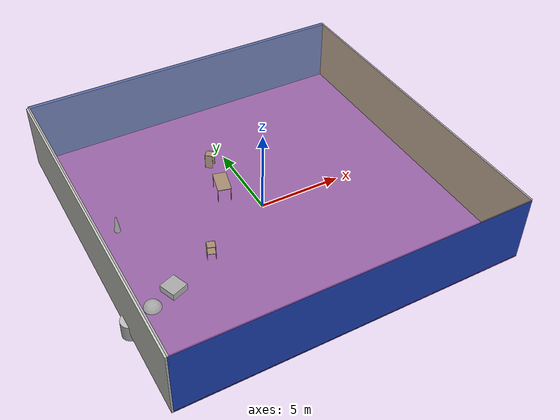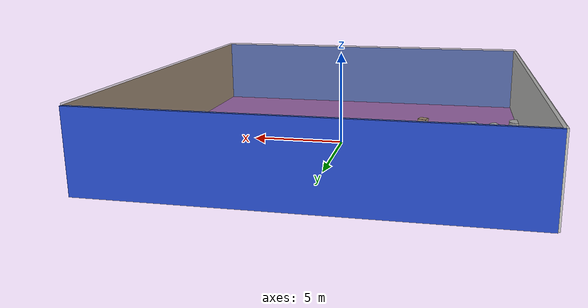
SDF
<sdf version="1.4">
 <world name="default">
  <physics type="ode">
   <max_step_size>0.001</max_step_size>
   <real_time_factor>1</real_time_factor>
   <real_time_update_rate>1000</real_time_update_rate>
   <gravity>0 0 -9.8</gravity>
  </physics>
  <scene><ambient>0.4 0.4 0.4 1</ambient><background>0.7 0.7 0.7 1</background><shadows>1</shadows></scene>
  <model name="Surrounding">
   <static>1</static>
   <link name="Ceiling">
    <collision name="Ceiling_Collision"><geometry><box><size>20 20 0.1</size></box></geometry></collision>
    <visual name="Ceiling_Visual">
     <geometry><box><size>20 20 0.1</size></box></geometry>
     <material>
      <script><uri>file://media/materials/scripts/gazebo.material</uri><name>Gazebo/GreyTransparent</name></script>
     </material>
    </visual>
    <pose>0 0 4.05 0 0 0</pose>
   </link>
   <link name="Wall_South">
    <collision name="Wall_South_Collision">
     <geometry><box><size>20 0 4</size></box></geometry>
     <pose>0 0 2 0 -0 0</pose>
    </collision>
    <visual name="Wall_South_Visual">
     <pose>0 0 2 0 -0 0</pose>
     <geometry><box><size>20 0 4</size></box></geometry>
     <material>
      <script><uri>file://media/materials/scripts/gazebo.material</uri><name>Gazebo/BlueGlow</name></script>
     </material>
    </visual>
    <velocity_decay><linear>0</linear><angular>0</angular></velocity_decay>
    <pose>0 -10 0 0 -0 0</pose>
   </link>
   <link name="Wall_East">
    <collision name="Wall_21_Collision">
     <geometry><box><size>20 0 4</size></box></geometry>
     <pose>0 0 2 0 -0 0</pose>
    </collision>
    <visual name="Wall_21_Visual">
     <pose>0 0 2 0 -0 0</pose>
     <geometry><box><size>20 0 4</size></box></geometry>
     <material>
      <script><uri>file://media/materials/scripts/gazebo.material</uri><name>Gazebo/WoodFloor</name></script>
     </material>
    </visual>
    <velocity_decay><linear>0</linear><angular>0</angular></velocity_decay>
    <pose>10 0 0 0 -0 1.5708</pose>
   </link>
   <link name="Wall_North">
    <collision name="Wall_22_Collision">
     <geometry><box><size>20 0.2 4</size></box></geometry>
     <pose>0 0 2 0 -0 0</pose>
    </collision>
    <visual name="Wall_22_Visual">
     <pose>0 0 2 0 -0 0</pose>
     <geometry><box><size>20 0.2 4</size></box></geometry>
     <material>
      <script><uri>file://media/materials/scripts/gazebo.material</uri><name>Gazebo/Blue</name></script>
     </material>
    </visual>
    <velocity_decay><linear>0</linear><angular>0</angular></velocity_decay>
    <pose>0 10 0 0 -0 0</pose>
   </link>
   <link name="Wall_West">
    <collision name="Wall_23_Collision">
     <geometry><box><size>20 0.2 4</size></box></geometry>
     <pose>0 0 2 0 -0 0</pose>
    </collision>
    <visual name="Wall_23_Visual">
     <pose>0 0 2 0 -0 0</pose>
     <geometry><box><size>20 0.2 4</size></box></geometry>
     <material>
      <script><uri>file://media/materials/scripts/gazebo.material</uri><name>Gazebo/CeilingTiled</name></script>
     </material>
    </visual>
    <velocity_decay><linear>0</linear><angular>0</angular></velocity_decay>
    <pose>-10 0 0 0 0 -1.5708</pose>
   </link>
   <link name="Ground_link">
    <collision name="collision">
     <pose>0 0 .05 0 -0 0</pose>
     <geometry><box><size>20 20 0.1</size></box></geometry>
    </collision>
    <visual name="visual">
     <pose>0 0 .05 0 -0 0</pose>
     <geometry><box><size>20 20 0.1</size></box></geometry>
     <material>
      <script><uri>file://media/materials/scripts/gazebo.material</uri><name>Gazebo/PurpleGlow</name></script>
     </material>
    </visual>
   </link>
   <static>1</static>
  </model>
  <spherical_coordinates>
   <surface_model>EARTH_WGS84</surface_model>
   <latitude_deg>0</latitude_deg>
   <longitude_deg>0</longitude_deg>
   <elevation>0</elevation>
   <heading_deg>0</heading_deg>
  </spherical_coordinates>
  <light name="lightball_0" type="diffuse">
   <diffuse>0.8 0.8 0.8 1</diffuse>
   <specular>0.2 0.2 0.2 1</specular>
   <attenuation>
    <range>100</range>
    <constant>0.7</constant>
    <linear>0.01</linear>
    <quadratic>0.001</quadratic>
   </attenuation>
   <direction>-0.5 0.1 -0.9</direction>
   <pose>-6.28674457041 6.71324965231 1.11353095833 0 0 0</pose>
  </light>
  <light name="lightball_1" type="diffuse">
   <diffuse>0.8 0.8 0.8 1</diffuse>
   <specular>0.2 0.2 0.2 1</specular>
   <attenuation>
    <range>100</range>
    <constant>0.7</constant>
    <linear>0.01</linear>
    <quadratic>0.001</quadratic>
   </attenuation>
   <direction>-0.5 0.1 -0.9</direction>
   <pose>-4.3831152889 -4.19444081993 0.909154563128 0 0 0</pose>
  </light>
  <light name="lightball_2" type="diffuse">
   <diffuse>0.8 0.8 0.8 1</diffuse>
   <specular>0.2 0.2 0.2 1</specular>
   <attenuation>
    <range>100</range>
    <constant>0.7</constant>
    <linear>0.01</linear>
    <quadratic>0.001</quadratic>
   </attenuation>
   <direction>-0.5 0.1 -0.9</direction>
   <pose>7.234695111 -3.7860209285 1.21734009394 0 0 0</pose>
  </light>
  <light name="lightball_3" type="diffuse">
   <diffuse>0.8 0.8 0.8 1</diffuse>
   <specular>0.2 0.2 0.2 1</specular>
   <attenuation>
    <range>100</range>
    <constant>0.7</constant>
    <linear>0.01</linear>
    <quadratic>0.001</quadratic>
   </attenuation>
   <direction>-0.5 0.1 -0.9</direction>
   <pose>-9.16500998757 -9.09017885176 2.49452736148 0 0 0</pose>
  </light>
  <light name="lightball_4" type="diffuse">
   <diffuse>0.8 0.8 0.8 1</diffuse>
   <specular>0.2 0.2 0.2 1</specular>
   <attenuation>
    <range>100</range>
    <constant>0.7</constant>
    <linear>0.01</linear>
    <quadratic>0.001</quadratic>
   </attenuation>
   <direction>-0.5 0.1 -0.9</direction>
   <pose>-1.93435698921 -4.71585640579 2.47611188321 0 0 0</pose>
  </light>
  <light name="lightball_5" type="diffuse">
   <diffuse>0.8 0.8 0.8 1</diffuse>
   <specular>0.2 0.2 0.2 1</specular>
   <attenuation>
    <range>100</range>
    <constant>0.7</constant>
    <linear>0.01</linear>
    <quadratic>0.001</quadratic>
   </attenuation>
   <direction>-0.5 0.1 -0.9</direction>
   <pose>7.20512866006 1.33433530711 3.59107326046 0 0 0</pose>
  </light>
  <light name="lightball_6" type="diffuse">
   <diffuse>0.8 0.8 0.8 1</diffuse>
   <specular>0.2 0.2 0.2 1</specular>
   <attenuation>
    <range>100</range>
    <constant>0.7</constant>
    <linear>0.01</linear>
    <quadratic>0.001</quadratic>
   </attenuation>
   <direction>-0.5 0.1 -0.9</direction>
   <pose>-2.90921320356 1.6758103285 2.35652722329 0 0 0</pose>
  </light>
  <light name="lightball_7" type="diffuse">
   <diffuse>0.8 0.8 0.8 1</diffuse>
   <specular>0.2 0.2 0.2 1</specular>
   <attenuation>
    <range>100</range>
    <constant>0.7</constant>
    <linear>0.01</linear>
    <quadratic>0.001</quadratic>
   </attenuation>
   <direction>-0.5 0.1 -0.9</direction>
   <pose>-3.111334705 -5.06712068734 0.925529890676 0 0 0</pose>
  </light>
  <light name="lightball_8" type="diffuse">
   <diffuse>0.8 0.8 0.8 1</diffuse>
   <specular>0.2 0.2 0.2 1</specular>
   <attenuation>
    <range>100</range>
    <constant>0.7</constant>
    <linear>0.01</linear>
    <quadratic>0.001</quadratic>
   </attenuation>
   <direction>-0.5 0.1 -0.9</direction>
   <pose>-7.22014546247 -3.88683848695 2.14936864214 0 0 0</pose>
  </light>
  <light name="lightball_9" type="diffuse">
   <diffuse>0.8 0.8 0.8 1</diffuse>
   <specular>0.2 0.2 0.2 1</specular>
   <attenuation>
    <range>100</range>
    <constant>0.7</constant>
    <linear>0.01</linear>
    <quadratic>0.001</quadratic>
   </attenuation>
   <direction>-0.5 0.1 -0.9</direction>
   <pose>-5.81407330241 9.71671031267 2.65442036442 0 0 0</pose>
  </light>
  <light name="lightball_10" type="diffuse">
   <diffuse>0.8 0.8 0.8 1</diffuse>
   <specular>0.2 0.2 0.2 1</specular>
   <attenuation>
    <range>100</range>
    <constant>0.7</constant>
    <linear>0.01</linear>
    <quadratic>0.001</quadratic>
   </attenuation>
   <direction>-0.5 0.1 -0.9</direction>
   <pose>-7.51302528767 2.11872085914 2.74588964805 0 0 0</pose>
  </light>
  <include>
   <uri>model://textured_shapes</uri>
   <pose>-8.48811177955 -4.02790850469 0 0 0 1.93344101204</pose>
  </include>
  <include>
   <uri>model://construction_cone</uri>
   <pose>-8.05358415911 1.97153767847 0 0 0 2.28583854875</pose>
  </include>
  <include><uri>model://cabinet</uri><pose>-4.36226267997 -2.28526679459 0 0 0 1.25650823617</pose></include>
  <include><uri>model://table</uri><pose>-1.58419829346 1.98088639896 0 0 0 1.31856178376</pose></include>
  <include><uri>model://cabinet</uri><pose>-1.09522464861 4.58924287539 0 0 0 2.40773275922</pose></include>
 </world>
</sdf>

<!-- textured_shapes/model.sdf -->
<sdf version="1.6">
  <model name="textured_shapes">
    <pose>0 0 0.5 0 0 0</pose>
    <link name="box">
      <pose>0 -1.5 0 0 0 0</pose>
      <collision name="collision">
        <geometry>
          <box>
            <size>1 1 1</size>
          </box>
        </geometry>
      </collision>
      <visual name="visual">
        <geometry>
          <box>
            <size>1 1 1</size>
          </box>
        </geometry>
        <material>
          <script>
            <uri>model://../model_source/models/textured_shapes/materials/scripts</uri>
            <uri>model://../model_source/models/textured_shapes/materials/textures</uri>
            <name>TexturedShape/Squares</name>
          </script>
        </material>
      </visual>
    </link>
    <link name="sphere">
      <collision name="collision">
        <geometry>
          <sphere>
            <radius>0.5</radius>
          </sphere>
        </geometry>
      </collision>
      <visual name="visual">
        <geometry>
          <sphere>
            <radius>0.5</radius>
          </sphere>
        </geometry>
        <material>
          <script>
            <uri>model://../model_source/models/textured_shapes/materials/scripts</uri>
            <uri>model://../model_source/models/textured_shapes/materials/textures</uri>
            <name>TexturedShape/Squares</name>
          </script>
        </material>
      </visual>
    </link>
    <link name="cylinder">
      <pose>0 1.5 0 0 0 0</pose>
      <collision name="collision">
        <geometry>
          <cylinder>
            <radius>0.5</radius>
            <length>1</length>
          </cylinder>
        </geometry>
      </collision>
      <visual name="visual">
        <geometry>
          <cylinder>
            <radius>0.5</radius>
            <length>1</length>
          </cylinder>
        </geometry>
        <material>
          <script>
            <uri>model://../model_source/models/textured_shapes/materials/scripts</uri>
            <uri>model://../model_source/models/textured_shapes/materials/textures</uri>
            <name>TexturedShape/Squares</name>
          </script>
        </material>
      </visual>
    </link>
  </model>
</sdf>

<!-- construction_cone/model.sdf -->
<sdf version="1.5">
  <model name="Construction Cone">
    <link name="link">
      <collision name="collision">
        <geometry>
          <mesh>
            <scale>10 10 10</scale>
            <uri>file://isr-testbed/construction_cone/meshes/construction_cone.dae</uri>
          </mesh>
        </geometry>
      </collision>
      <visual name="visual">
        <geometry>
          <mesh>
            <scale>10 10 10</scale>
            <uri>file://isr-testbed/construction_cone/meshes/construction_cone.dae</uri>
          </mesh>
        </geometry>
      </visual>
    </link>
  </model>
</sdf>

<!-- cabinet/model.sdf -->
<sdf version="1.5">
  <model name="cabinet">
    <static>true</static>
    <link name="cabinet_bottom_plate">
      <inertial>
        <pose>0 0 -1 0 0 0</pose>
        <inertia>
          <ixx>2.050000</ixx>
          <ixy>0</ixy>
          <ixz>0</ixz>
          <iyy>2.050000</iyy>
          <iyz>0</iyz>
          <izz>2.050000</izz>
        </inertia>
        <mass>25.000000</mass>
      </inertial>
      <collision name="cabinet_bottom_plate_geom">
        <pose>0 0 0.010000 0 0 0</pose>
        <geometry>
          <box>
            <size>0.450000 0.450000 0.020000</size>
          </box>
        </geometry>
      </collision>
      <visual name="cabinet_bottom_plate_geom_visual">
        <pose>0 0 0.010000 0 0 0</pose>
        <geometry>
          <box>
            <size>0.450000 0.450000 0.020000</size>
          </box>
        </geometry>
        <material>
          <script>
            <uri>model://media/materials/scripts/gazebo.material</uri>
            <name>Gazebo/Wood</name>
          </script>
        </material>
      </visual>
      <collision name="cabinet_bottom_plate_geom_cabinet_back_plate">
        <pose>0.235000 0 0.510000 0 0 0</pose>
        <geometry>
          <box>
            <size>0.020000 0.450000 1.020000</size>
          </box>
        </geometry>
      </collision>
      <visual name="cabinet_bottom_plate_geom_cabinet_back_plate_visual">
        <pose>0.235000 0 0.510000 0 0 0</pose>
        <geometry>
          <box>
            <size>0.020000 0.450000 1.020000</size>
          </box>
        </geometry>
        <material>
          <script>
            <uri>model://media/materials/scripts/gazebo.material</uri>
            <name>Gazebo/Wood</name>
          </script>
        </material>
      </visual>
      <collision name="cabinet_bottom_plate_geom_cabinet_left_plate">
        <pose>0 0.235000 0.510000 0 0 0</pose>
        <geometry>
          <box>
            <size>0.450000 0.020000 1.020000</size>
          </box>
        </geometry>
      </collision>
      <visual name="cabinet_bottom_plate_geom_cabinet_left_plate_visual">
        <pose>0 0.235000 0.510000 0 0 0</pose>
        <geometry>
          <box>
            <size>0.450000 0.020000 1.020000</size>
          </box>
        </geometry>
        <material>
          <script>
            <uri>model://media/materials/scripts/gazebo.material</uri>
            <name>Gazebo/Wood</name>
          </script>
        </material>
      </visual>
      <collision name="cabinet_bottom_plate_geom_cabinet_middle_plate">
        <pose>0 0 0.510000 0 0 0</pose>
        <geometry>
          <box>
            <size>0.450000 0.450000 0.020000</size>
          </box>
        </geometry>
      </collision>
      <visual name="cabinet_bottom_plate_geom_cabinet_middle_plate_visual">
        <pose>0 0 0.510000 0 0 0</pose>
        <geometry>
          <box>
            <size>0.450000 0.450000 0.020000</size>
          </box>
        </geometry>
        <material>
          <script>
            <uri>model://media/materials/scripts/gazebo.material</uri>
            <name>Gazebo/Wood</name>
          </script>
        </material>
      </visual>
      <collision name="cabinet_bottom_plate_geom_cabinet_right_plate">
        <pose>0 -0.235000 0.510000 0 0 0</pose>
        <geometry>
          <box>
            <size>0.450000 0.020000 1.020000</size>
          </box>
        </geometry>
      </collision>
      <visual name="cabinet_bottom_plate_geom_cabinet_right_plate_visual">
        <pose>0 -0.235000 0.510000 0 0 0</pose>
        <geometry>
          <box>
            <size>0.450000 0.020000 1.020000</size>
          </box>
        </geometry>
        <material>
          <script>
            <uri>model://media/materials/scripts/gazebo.material</uri>
            <name>Gazebo/Wood</name>
          </script>
        </material>
      </visual>
      <collision name="cabinet_bottom_plate_geom_cabinet_top_plate">
        <pose>0 0 1.010000 0 0 0</pose>
        <geometry>
          <box>
            <size>0.450000 0.450000 0.020000</size>
          </box>
        </geometry>
      </collision>
      <visual name="cabinet_bottom_plate_geom_cabinet_top_plate_visual">
        <pose>0 0 1.010000 0 0 0</pose>
        <geometry>
          <box>
            <size>0.450000 0.450000 0.020000</size>
          </box>
        </geometry>
        <material>
          <script>
            <uri>model://media/materials/scripts/gazebo.material</uri>
            <name>Gazebo/Wood</name>
          </script>
        </material>
      </visual>
    </link>
  </model>
</sdf>

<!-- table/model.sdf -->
<sdf version="1.5">
  <model name="table">
    <static>true</static>
    <link name="link">
      <collision name="surface">
        <pose>0 0 1.0 0 0 0</pose>
        <geometry>
          <box>
            <size>1.5 0.8 0.03</size>
          </box>
        </geometry>
        <surface>
          <friction>
            <ode>
              <mu>0.6</mu>
              <mu2>0.6</mu2>
            </ode>
          </friction>
        </surface>
      </collision>
      <visual name="visual1">
        <pose>0 0 1.0 0 0 0</pose>
        <geometry>
          <box>
            <size>1.5 0.8 0.03</size>
          </box>
        </geometry>
        <material>
          <script>
            <uri>model://media/materials/scripts/gazebo.material</uri>
            <name>Gazebo/Wood</name>
          </script>
        </material>
      </visual>
      <collision name="front_left_leg">
        <pose>0.68 0.38 0.5 0 0 0</pose>
        <geometry>
          <cylinder>
            <radius>0.02</radius>
            <length>1.0</length>
          </cylinder>
        </geometry>
      </collision>
      <visual name="front_left_leg">
        <pose>0.68 0.38 0.5 0 0 0</pose>
        <geometry>
          <cylinder>
            <radius>0.02</radius>
            <length>1.0</length>
          </cylinder>
        </geometry>
        <material>
          <script>
            <uri>model://media/materials/scripts/gazebo.material</uri>
            <name>Gazebo/Grey</name>
          </script>
        </material>
      </visual>
      <collision name="front_right_leg">
        <pose>0.68 -0.38 0.5 0 0 0</pose>
        <geometry>
          <cylinder>
            <radius>0.02</radius>
            <length>1.0</length>
          </cylinder>
        </geometry>
      </collision>
      <visual name="front_right_leg">
        <pose>0.68 -0.38 0.5 0 0 0</pose>
        <geometry>
          <cylinder>
            <radius>0.02</radius>
            <length>1.0</length>
          </cylinder>
        </geometry>
        <material>
          <script>
            <uri>model://media/materials/scripts/gazebo.material</uri>
            <name>Gazebo/Grey</name>
          </script>
        </material>
      </visual>
      <collision name="back_right_leg">
        <pose>-0.68 -0.38 0.5 0 0 0</pose>
        <geometry>
          <cylinder>
            <radius>0.02</radius>
            <length>1.0</length>
          </cylinder>
        </geometry>
      </collision>
      <visual name="back_right_leg">
        <pose>-0.68 -0.38 0.5 0 0 0</pose>
        <geometry>
          <cylinder>
            <radius>0.02</radius>
            <length>1.0</length>
          </cylinder>
        </geometry>
        <material>
          <script>
            <uri>model://media/materials/scripts/gazebo.material</uri>
            <name>Gazebo/Grey</name>
          </script>
        </material>
      </visual>
      <collision name="back_left_leg">
        <pose>-0.68 0.38 0.5 0 0 0</pose>
        <geometry>
          <cylinder>
            <radius>0.02</radius>
            <length>1.0</length>
          </cylinder>
        </geometry>
      </collision>
      <visual name="back_left_leg">
        <pose>-0.68 0.38 0.5 0 0 0</pose>
        <geometry>
          <cylinder>
            <radius>0.02</radius>
            <length>1.0</length>
          </cylinder>
        </geometry>
        <material>
          <script>
            <uri>model://media/materials/scripts/gazebo.material</uri>
            <name>Gazebo/Grey</name>
          </script>
        </material>
      </visual>
    </link>
  </model>
</sdf>
